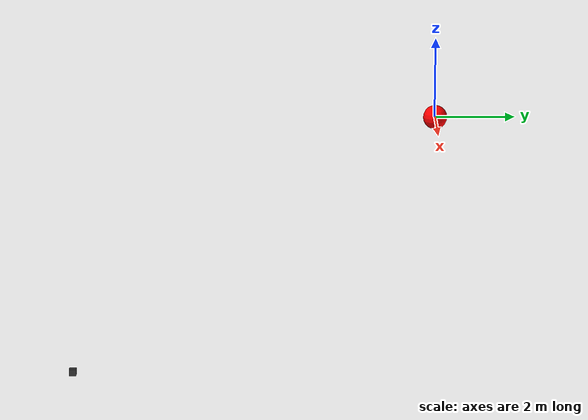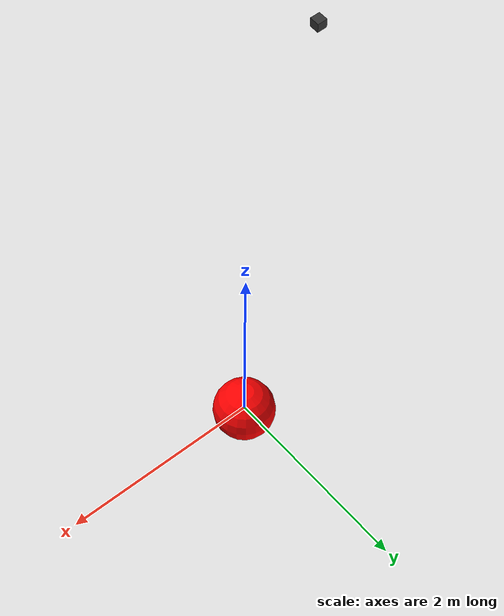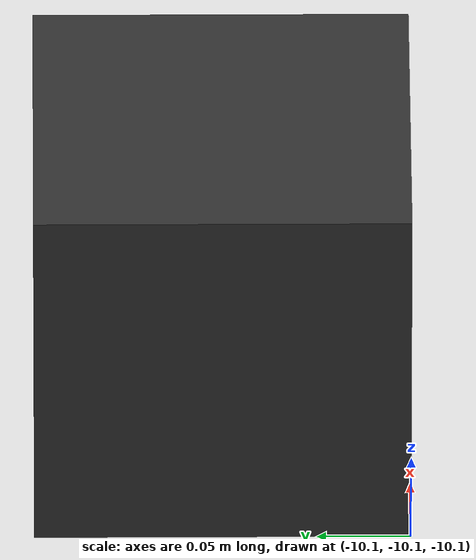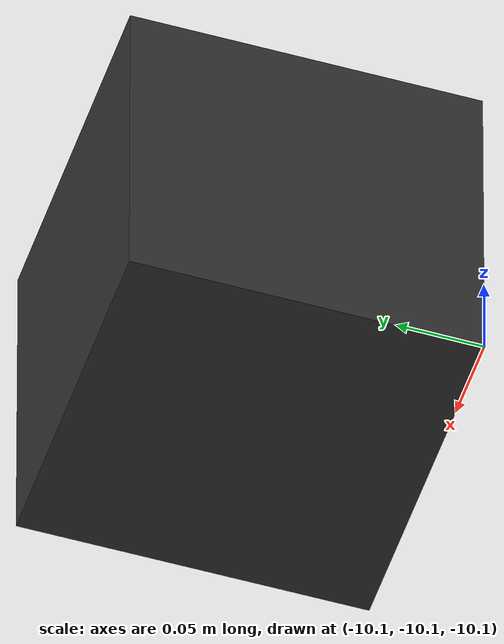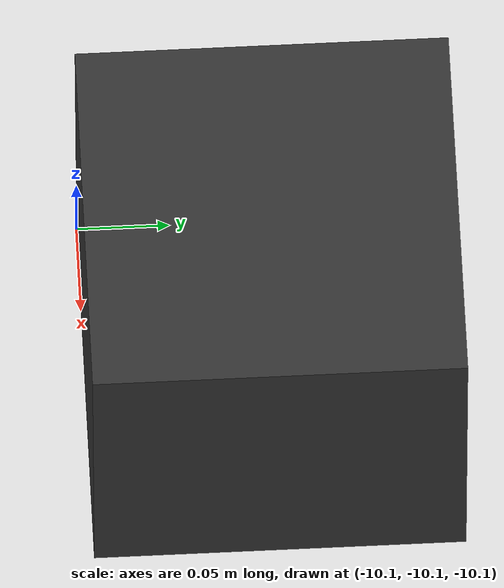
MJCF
<mujoco>

    <include file="include/assets.xml"/>

    <option timestep='0.0025'/>

    <worldbody>

        <camera name="track" pos="0 0 5" mode="fixed" euler="0 0 0"/>

        <!-- lighting of the scene -->
        <light diffuse=".8 .8 .8" dir="0 -.15 -1" directional="false" pos="1 1 4.0" specular="0.3 0.3 0.3" castshadow="false"/>

        <!-- dummy -->
        <body name="dummy" pos="-10 -10 -10">
            <geom size="0.1 0.1 0.1" type="box" rgba="0.2 0.2 0.2 1" contype="0" conaffinity="0"/>
            <joint name="dummy_joint" pos="0 0 0" axis="0 0 1" limited="true" range="-0.2 0.2"/>
        </body>

        <!-- pointmass -->
        <site name="point" pos="0.01 0.01 0" size="0.3" rgba="1 0 0 1"/>

        <!-- goal site -->
        <!-- boundaries that can be seen by the camera: left x=-2 top y=+2 -->
        <site name="goal_reach_site" pos="-1 1 0" size="0.05" rgba="0 1 0 0"/>

    </worldbody>

    <include file="include/actuators.xml"/>

</mujoco>

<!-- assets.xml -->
<mujocoinclude>

    <option gravity="0 0 0" />
    <visual>
        <headlight ambient="0.5 0.5 0.5"  />
    </visual>

    <compiler inertiafromgeom="auto" angle="radian" coordinate="local" eulerseq="XYZ"/>
    <size njmax="6000" nconmax="6000"/>

    <option timestep='0.0025' iterations="50" tolerance="1e-10" solver="Newton" jacobian="dense" cone="elliptic"/>

    <!-- defaults -->
    <default>
        <joint limited="true"
               damping="10"
               frictionloss="0.001"
               margin="0.01"
               armature=".1"
               user="0"/>
        <geom solref="0.02 1" solimp="1 1 0"/>
        <motor ctrllimited="true" ctrlrange="-1 1"/>
        <general ctrllimited="true" ctrlrange="-1 1" dyntype="none" gaintype="fixed"/>
    </default>

</mujocoinclude>

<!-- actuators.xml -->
<mujocoinclude>
    <!-- position control -->
    <actuator>
        <position name="j0" joint="dummy_joint" forcerange="-1 1" ctrlrange="-0.1 0.1" kp="1"/>
    </actuator>

</mujocoinclude>
